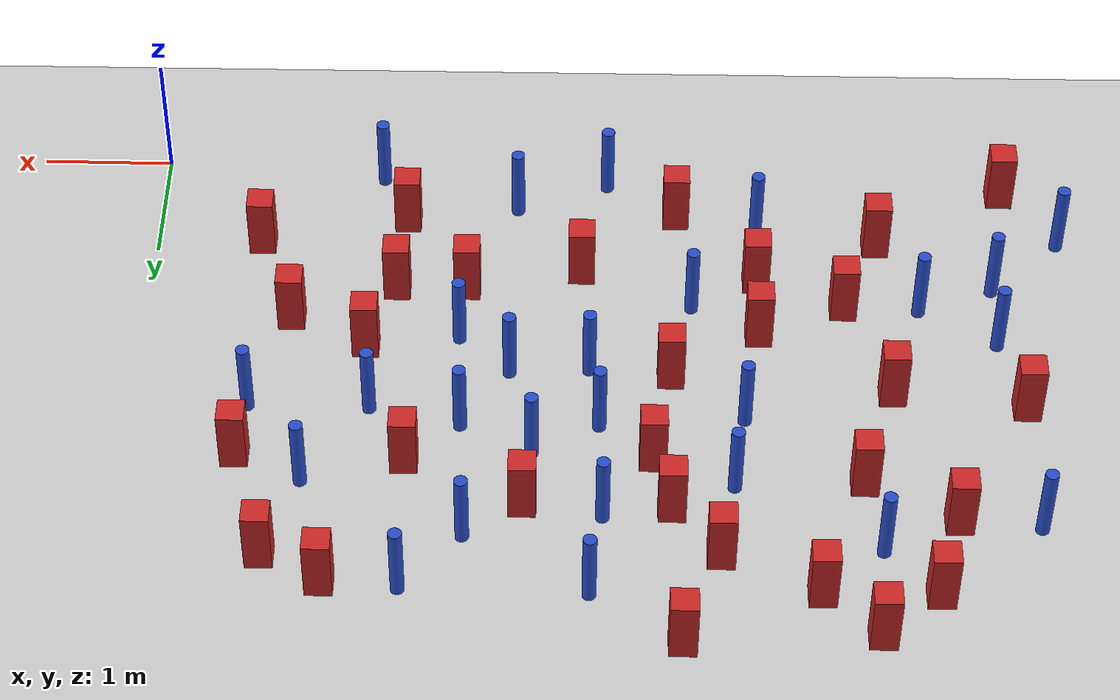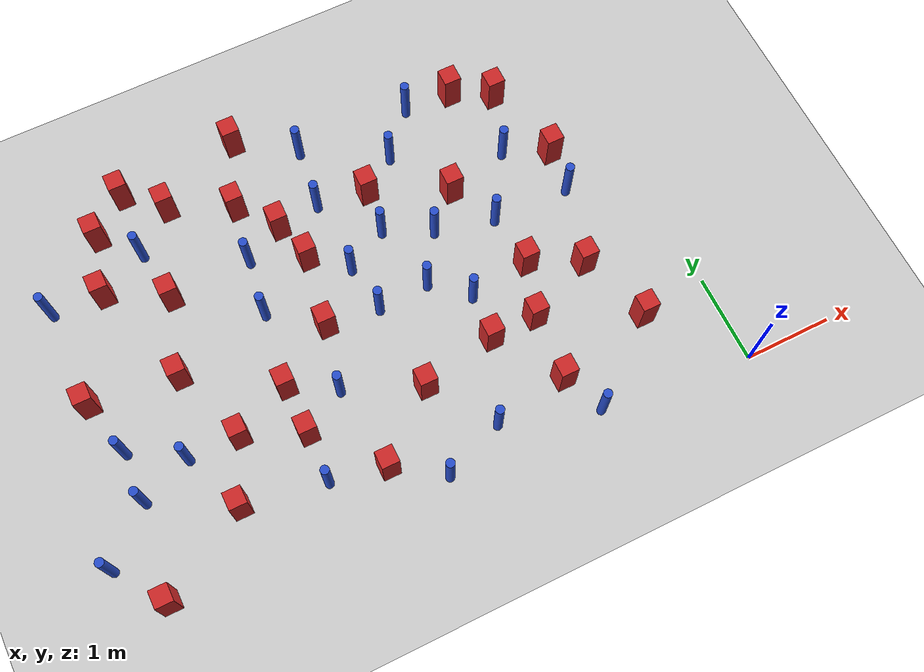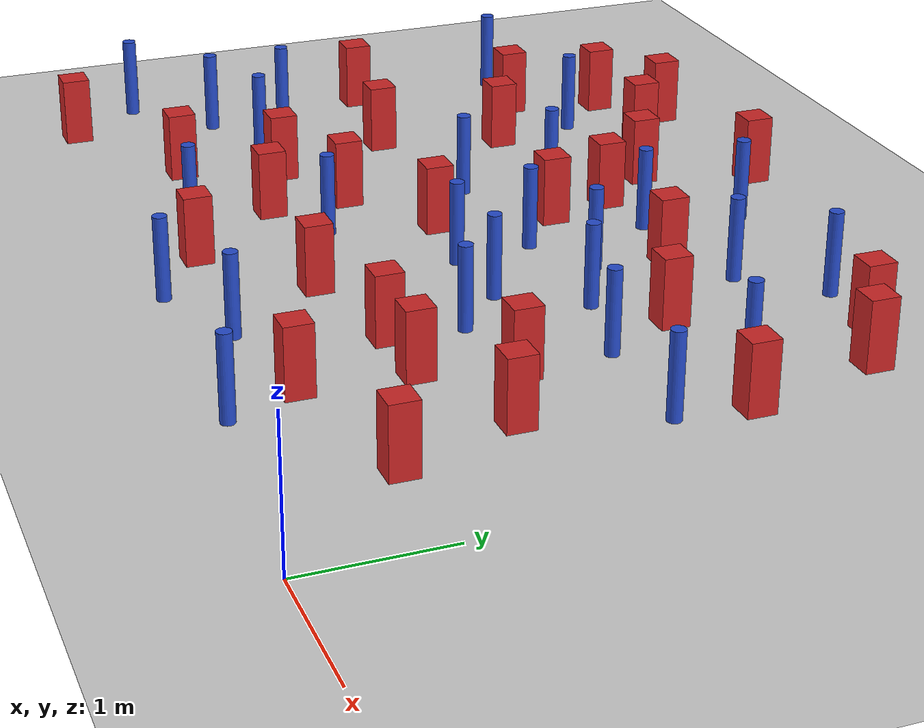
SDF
<sdf version="1.6">
 <world name="default">
  <model name="ground_plane">
   <static>1</static>
   <link name="link">
    <collision name="collision">
     <geometry><plane><normal>0 0 1</normal><size>100 100</size></plane></geometry>
     <surface><friction><ode><mu>100</mu><mu2>50</mu2></ode></friction></surface>
    </collision>
    <visual name="visual">
     <cast_shadows>0</cast_shadows>
     <geometry><plane><normal>0 0 1</normal><size>100 100</size></plane></geometry>
     <material>
      <ambient>1.0 1.0 1.0 1.0</ambient>
      <diffuse>0.8 0.8 0.8 1.0</diffuse>
      <specular>0.01 0.01 0.01 1.000000</specular>
     </material>
    </visual>
   </link>
  </model>
  <model name="pole_obstacle1">
   <static>true</static>
   <pose>-3.49145345762 0.226264162207 2.88873142074e-08 -9.90536690909e-09 4.60219948964e-07 -1.2096599498e-07</pose>
   <link name="link">
    <pose>0 0 0.3 0 -0 0</pose>
    <inertial>
     <mass>1</mass>
     <inertia><ixx>0.145833</ixx><ixy>0</ixy><ixz>0</ixz><iyy>0.145833</iyy><iyz>0</iyz><izz>0.125</izz></inertia>
    </inertial>
    <collision name="collision">
     <geometry><cylinder><radius>0.05</radius><length>.6</length></cylinder></geometry>
    </collision>
    <visual name="visual">
     <geometry><cylinder><radius>0.05</radius><length>.6</length></cylinder></geometry>
     <material>
      <script><name>Gazebo/Blue</name><uri>file://media/materials/scripts/gazebo.material</uri></script>
     </material>
    </visual>
   </link>
  </model>
  <model name="square_post_obstacle10">
   <static>true</static>
   <pose>-5.61227143454 2.45964329711 8.22691968438e-08 7.2212513382e-06 -7.54495500217e-07 2.29674213826e-05</pose>
   <link name="link">
    <pose>0 0 0.25 0 -0 0</pose>
    <inertial>
     <mass>100</mass>
     <inertia>
      <ixx>0.166667</ixx>
      <ixy>0</ixy>
      <ixz>0</ixz>
      <iyy>0.166667</iyy>
      <iyz>0</iyz>
      <izz>0.166667</izz>
     </inertia>
    </inertial>
    <collision name="collision"><geometry><box><size>.2 .2 .5</size></box></geometry></collision>
    <visual name="visual">
     <geometry><box><size>.2 .2 .5</size></box></geometry>
     <material>
      <script><name>Gazebo/Red</name><uri>file://media/materials/scripts/gazebo.material</uri></script>
     </material>
    </visual>
   </link>
  </model>
  <model name="square_post_obstacle14">
   <static>true</static>
   <pose>-5.2877736811 1.57196112984 8.22691968438e-08 7.2212513382e-06 -7.54495500217e-07 2.29674213826e-05</pose>
   <link name="link">
    <pose>0 0 0.25 0 -0 0</pose>
    <inertial>
     <mass>100</mass>
     <inertia>
      <ixx>0.166667</ixx>
      <ixy>0</ixy>
      <ixz>0</ixz>
      <iyy>0.166667</iyy>
      <iyz>0</iyz>
      <izz>0.166667</izz>
     </inertia>
    </inertial>
    <collision name="collision"><geometry><box><size>.2 .2 .5</size></box></geometry></collision>
    <visual name="visual">
     <geometry><box><size>.2 .2 .5</size></box></geometry>
     <material>
      <script><name>Gazebo/Red</name><uri>file://media/materials/scripts/gazebo.material</uri></script>
     </material>
    </visual>
   </link>
  </model>
  <model name="pole_obstacle13">
   <static>true</static>
   <pose>-3.37699610035 4.40599011899 2.88873142074e-08 -9.90536689859e-09 4.60219948989e-07 -1.20965994961e-07</pose>
   <link name="link">
    <pose>0 0 0.3 0 -0 0</pose>
    <inertial>
     <mass>1</mass>
     <inertia><ixx>0.145833</ixx><ixy>0</ixy><ixz>0</ixz><iyy>0.145833</iyy><iyz>0</iyz><izz>0.125</izz></inertia>
    </inertial>
    <collision name="collision">
     <geometry><cylinder><radius>0.05</radius><length>.6</length></cylinder></geometry>
    </collision>
    <visual name="visual">
     <geometry><cylinder><radius>0.05</radius><length>.6</length></cylinder></geometry>
     <material>
      <script><name>Gazebo/Blue</name><uri>file://media/materials/scripts/gazebo.material</uri></script>
     </material>
    </visual>
   </link>
  </model>
  <model name="pole_obstacle14">
   <static>true</static>
   <pose>-4.51162540025 2.73058737092 2.88873142074e-08 -9.90536690245e-09 4.6021994898e-07 -1.20965994966e-07</pose>
   <link name="link">
    <pose>0 0 0.3 0 -0 0</pose>
    <inertial>
     <mass>1</mass>
     <inertia><ixx>0.145833</ixx><ixy>0</ixy><ixz>0</ixz><iyy>0.145833</iyy><iyz>0</iyz><izz>0.125</izz></inertia>
    </inertial>
    <collision name="collision">
     <geometry><cylinder><radius>0.05</radius><length>.6</length></cylinder></geometry>
    </collision>
    <visual name="visual">
     <geometry><cylinder><radius>0.05</radius><length>.6</length></cylinder></geometry>
     <material>
      <script><name>Gazebo/Blue</name><uri>file://media/materials/scripts/gazebo.material</uri></script>
     </material>
    </visual>
   </link>
  </model>
  <model name="pole_obstacle17">
   <static>true</static>
   <pose>-2.38275450825 1.92439304847 2.88873142074e-08 -9.90536689395e-09 4.60219949e-07 -1.20965994953e-07</pose>
   <link name="link">
    <pose>0 0 0.3 0 -0 0</pose>
    <inertial>
     <mass>1</mass>
     <inertia><ixx>0.145833</ixx><ixy>0</ixy><ixz>0</ixz><iyy>0.145833</iyy><iyz>0</iyz><izz>0.125</izz></inertia>
    </inertial>
    <collision name="collision">
     <geometry><cylinder><radius>0.05</radius><length>.6</length></cylinder></geometry>
    </collision>
    <visual name="visual">
     <geometry><cylinder><radius>0.05</radius><length>.6</length></cylinder></geometry>
     <material>
      <script><name>Gazebo/Blue</name><uri>file://media/materials/scripts/gazebo.material</uri></script>
     </material>
    </visual>
   </link>
  </model>
  <model name="square_post_obstacle27">
   <static>true</static>
   <pose>-6.59607558141 2.58750587462 8.22691968438e-08 7.2212513382e-06 -7.54495500217e-07 2.29674213826e-05</pose>
   <link name="link">
    <pose>0 0 0.25 0 -0 0</pose>
    <inertial>
     <mass>100</mass>
     <inertia>
      <ixx>0.166667</ixx>
      <ixy>0</ixy>
      <ixz>0</ixz>
      <iyy>0.166667</iyy>
      <iyz>0</iyz>
      <izz>0.166667</izz>
     </inertia>
    </inertial>
    <collision name="collision"><geometry><box><size>.2 .2 .5</size></box></geometry></collision>
    <visual name="visual">
     <geometry><box><size>.2 .2 .5</size></box></geometry>
     <material>
      <script><name>Gazebo/Red</name><uri>file://media/materials/scripts/gazebo.material</uri></script>
     </material>
    </visual>
   </link>
  </model>
  <model name="square_post_obstacle28">
   <static>true</static>
   <pose>-5.57000486562 0.87581178728 8.22691968438e-08 7.2212513382e-06 -7.54495500217e-07 2.29674213826e-05</pose>
   <link name="link">
    <pose>0 0 0.25 0 -0 0</pose>
    <inertial>
     <mass>100</mass>
     <inertia>
      <ixx>0.166667</ixx>
      <ixy>0</ixy>
      <ixz>0</ixz>
      <iyy>0.166667</iyy>
      <iyz>0</iyz>
      <izz>0.166667</izz>
     </inertia>
    </inertial>
    <collision name="collision"><geometry><box><size>.2 .2 .5</size></box></geometry></collision>
    <visual name="visual">
     <geometry><box><size>.2 .2 .5</size></box></geometry>
     <material>
      <script><name>Gazebo/Red</name><uri>file://media/materials/scripts/gazebo.material</uri></script>
     </material>
    </visual>
   </link>
  </model>
  <model name="square_post_obstacle29">
   <static>true</static>
   <pose>-5.40813774441 4.75399333263 8.22691968438e-08 7.2212513382e-06 -7.54495500217e-07 2.29674213826e-05</pose>
   <link name="link">
    <pose>0 0 0.25 0 -0 0</pose>
    <inertial>
     <mass>100</mass>
     <inertia>
      <ixx>0.166667</ixx>
      <ixy>0</ixy>
      <ixz>0</ixz>
      <iyy>0.166667</iyy>
      <iyz>0</iyz>
      <izz>0.166667</izz>
     </inertia>
    </inertial>
    <collision name="collision"><geometry><box><size>.2 .2 .5</size></box></geometry></collision>
    <visual name="visual">
     <geometry><box><size>.2 .2 .5</size></box></geometry>
     <material>
      <script><name>Gazebo/Red</name><uri>file://media/materials/scripts/gazebo.material</uri></script>
     </material>
    </visual>
   </link>
  </model>
  <model name="pole_obstacle21">
   <static>true</static>
   <pose>-2.47026333002 3.88700977102 2.88873142074e-08 -9.90536690232e-09 4.6021994898e-07 -1.20965994968e-07</pose>
   <link name="link">
    <pose>0 0 0.3 0 -0 0</pose>
    <inertial>
     <mass>1</mass>
     <inertia><ixx>0.145833</ixx><ixy>0</ixy><ixz>0</ixz><iyy>0.145833</iyy><iyz>0</iyz><izz>0.125</izz></inertia>
    </inertial>
    <collision name="collision">
     <geometry><cylinder><radius>0.05</radius><length>.6</length></cylinder></geometry>
    </collision>
    <visual name="visual">
     <geometry><cylinder><radius>0.05</radius><length>.6</length></cylinder></geometry>
     <material>
      <script><name>Gazebo/Blue</name><uri>file://media/materials/scripts/gazebo.material</uri></script>
     </material>
    </visual>
   </link>
  </model>
  <model name="square_post_obstacle31">
   <static>true</static>
   <pose>-0.78774820962 3.1520821528 8.22691968438e-08 7.2212513382e-06 -7.54495500217e-07 2.29674213826e-05</pose>
   <link name="link">
    <pose>0 0 0.25 0 -0 0</pose>
    <inertial>
     <mass>100</mass>
     <inertia>
      <ixx>0.166667</ixx>
      <ixy>0</ixy>
      <ixz>0</ixz>
      <iyy>0.166667</iyy>
      <iyz>0</iyz>
      <izz>0.166667</izz>
     </inertia>
    </inertial>
    <collision name="collision"><geometry><box><size>.2 .2 .5</size></box></geometry></collision>
    <visual name="visual">
     <geometry><box><size>.2 .2 .5</size></box></geometry>
     <material>
      <script><name>Gazebo/Red</name><uri>file://media/materials/scripts/gazebo.material</uri></script>
     </material>
    </visual>
   </link>
  </model>
  <model name="pole_obstacle32">
   <static>true</static>
   <pose>-6.43399321943 1.92442004686 2.88873142074e-08 -9.90536689445e-09 4.60219948999e-07 -1.20965994956e-07</pose>
   <link name="link">
    <pose>0 0 0.3 0 -0 0</pose>
    <inertial>
     <mass>1</mass>
     <inertia><ixx>0.145833</ixx><ixy>0</ixy><ixz>0</ixz><iyy>0.145833</iyy><iyz>0</iyz><izz>0.125</izz></inertia>
    </inertial>
    <collision name="collision">
     <geometry><cylinder><radius>0.05</radius><length>.6</length></cylinder></geometry>
    </collision>
    <visual name="visual">
     <geometry><cylinder><radius>0.05</radius><length>.6</length></cylinder></geometry>
     <material>
      <script><name>Gazebo/Blue</name><uri>file://media/materials/scripts/gazebo.material</uri></script>
     </material>
    </visual>
   </link>
  </model>
  <model name="pole_obstacle37">
   <static>true</static>
   <pose>-1.28037980983 3.3846026239 2.88873142074e-08 -9.90536689791e-09 4.6021994899e-07 -1.20965994959e-07</pose>
   <link name="link">
    <pose>0 0 0.3 0 -0 0</pose>
    <inertial>
     <mass>1</mass>
     <inertia><ixx>0.145833</ixx><ixy>0</ixy><ixz>0</ixz><iyy>0.145833</iyy><iyz>0</iyz><izz>0.125</izz></inertia>
    </inertial>
    <collision name="collision">
     <geometry><cylinder><radius>0.05</radius><length>.6</length></cylinder></geometry>
    </collision>
    <visual name="visual">
     <geometry><cylinder><radius>0.05</radius><length>.6</length></cylinder></geometry>
     <material>
      <script><name>Gazebo/Blue</name><uri>file://media/materials/scripts/gazebo.material</uri></script>
     </material>
    </visual>
   </link>
  </model>
  <model name="square_post_obstacle46">
   <static>true</static>
   <pose>-1.48677609734 4.34802079145 8.22691968438e-08 7.2212513382e-06 -7.54495500217e-07 2.29674213826e-05</pose>
   <link name="link">
    <pose>0 0 0.25 0 -0 0</pose>
    <inertial>
     <mass>100</mass>
     <inertia>
      <ixx>0.166667</ixx>
      <ixy>0</ixy>
      <ixz>0</ixz>
      <iyy>0.166667</iyy>
      <iyz>0</iyz>
      <izz>0.166667</izz>
     </inertia>
    </inertial>
    <collision name="collision"><geometry><box><size>.2 .2 .5</size></box></geometry></collision>
    <visual name="visual">
     <geometry><box><size>.2 .2 .5</size></box></geometry>
     <material>
      <script><name>Gazebo/Red</name><uri>file://media/materials/scripts/gazebo.material</uri></script>
     </material>
    </visual>
   </link>
  </model>
  <model name="square_post_obstacle51">
   <static>true</static>
   <pose>-5.0071753273 4.38698122143 8.22691968438e-08 7.2212513382e-06 -7.54495500217e-07 2.29674213826e-05</pose>
   <link name="link">
    <pose>0 0 0.25 0 -0 0</pose>
    <inertial>
     <mass>100</mass>
     <inertia>
      <ixx>0.166667</ixx>
      <ixy>0</ixy>
      <ixz>0</ixz>
      <iyy>0.166667</iyy>
      <iyz>0</iyz>
      <izz>0.166667</izz>
     </inertia>
    </inertial>
    <collision name="collision"><geometry><box><size>.2 .2 .5</size></box></geometry></collision>
    <visual name="visual">
     <geometry><box><size>.2 .2 .5</size></box></geometry>
     <material>
      <script><name>Gazebo/Red</name><uri>file://media/materials/scripts/gazebo.material</uri></script>
     </material>
    </visual>
   </link>
  </model>
  <model name="pole_obstacle51">
   <static>true</static>
   <pose>-2.7931308182 0.506604703936 2.88873142074e-08 -9.90536689404e-09 4.60219949e-07 -1.20965994955e-07</pose>
   <link name="link">
    <pose>0 0 0.3 0 -0 0</pose>
    <inertial>
     <mass>1</mass>
     <inertia><ixx>0.145833</ixx><ixy>0</ixy><ixz>0</ixz><iyy>0.145833</iyy><iyz>0</iyz><izz>0.125</izz></inertia>
    </inertial>
    <collision name="collision">
     <geometry><cylinder><radius>0.05</radius><length>.6</length></cylinder></geometry>
    </collision>
    <visual name="visual">
     <geometry><cylinder><radius>0.05</radius><length>.6</length></cylinder></geometry>
     <material>
      <script><name>Gazebo/Blue</name><uri>file://media/materials/scripts/gazebo.material</uri></script>
     </material>
    </visual>
   </link>
  </model>
  <model name="pole_obstacle59">
   <static>true</static>
   <pose>-3.36241737606 2.24000275357 2.88873142074e-08 -9.90536690232e-09 4.6021994898e-07 -1.20965994968e-07</pose>
   <link name="link">
    <pose>0 0 0.3 0 -0 0</pose>
    <inertial>
     <mass>1</mass>
     <inertia><ixx>0.145833</ixx><ixy>0</ixy><ixz>0</ixz><iyy>0.145833</iyy><iyz>0</iyz><izz>0.125</izz></inertia>
    </inertial>
    <collision name="collision">
     <geometry><cylinder><radius>0.05</radius><length>.6</length></cylinder></geometry>
    </collision>
    <visual name="visual">
     <geometry><cylinder><radius>0.05</radius><length>.6</length></cylinder></geometry>
     <material>
      <script><name>Gazebo/Blue</name><uri>file://media/materials/scripts/gazebo.material</uri></script>
     </material>
    </visual>
   </link>
  </model>
  <model name="square_post_obstacle68">
   <static>true</static>
   <pose>-4.02483889352 4.83824581101 8.22691968438e-08 7.2212513382e-06 -7.54495500217e-07 2.29674213826e-05</pose>
   <link name="link">
    <pose>0 0 0.25 0 -0 0</pose>
    <inertial>
     <mass>100</mass>
     <inertia>
      <ixx>0.166667</ixx>
      <ixy>0</ixy>
      <ixz>0</ixz>
      <iyy>0.166667</iyy>
      <iyz>0</iyz>
      <izz>0.166667</izz>
     </inertia>
    </inertial>
    <collision name="collision"><geometry><box><size>.2 .2 .5</size></box></geometry></collision>
    <visual name="visual">
     <geometry><box><size>.2 .2 .5</size></box></geometry>
     <material>
      <script><name>Gazebo/Red</name><uri>file://media/materials/scripts/gazebo.material</uri></script>
     </material>
    </visual>
   </link>
  </model>
  <model name="square_post_obstacle73">
   <static>true</static>
   <pose>-5.35760563818 3.34932124848 8.22691968438e-08 7.2212513382e-06 -7.54495500217e-07 2.29674213826e-05</pose>
   <link name="link">
    <pose>0 0 0.25 0 -0 0</pose>
    <inertial>
     <mass>100</mass>
     <inertia>
      <ixx>0.166667</ixx>
      <ixy>0</ixy>
      <ixz>0</ixz>
      <iyy>0.166667</iyy>
      <iyz>0</iyz>
      <izz>0.166667</izz>
     </inertia>
    </inertial>
    <collision name="collision"><geometry><box><size>.2 .2 .5</size></box></geometry></collision>
    <visual name="visual">
     <geometry><box><size>.2 .2 .5</size></box></geometry>
     <material>
      <script><name>Gazebo/Red</name><uri>file://media/materials/scripts/gazebo.material</uri></script>
     </material>
    </visual>
   </link>
  </model>
  <model name="square_post_obstacle75">
   <static>true</static>
   <pose>-0.817578390947 0.923655932228 8.22691968438e-08 7.2212513382e-06 -7.54495500217e-07 2.29674213826e-05</pose>
   <link name="link">
    <pose>0 0 0.25 0 -0 0</pose>
    <inertial>
     <mass>100</mass>
     <inertia>
      <ixx>0.166667</ixx>
      <ixy>0</ixy>
      <ixz>0</ixz>
      <iyy>0.166667</iyy>
      <iyz>0</iyz>
      <izz>0.166667</izz>
     </inertia>
    </inertial>
    <collision name="collision"><geometry><box><size>.2 .2 .5</size></box></geometry></collision>
    <visual name="visual">
     <geometry><box><size>.2 .2 .5</size></box></geometry>
     <material>
      <script><name>Gazebo/Red</name><uri>file://media/materials/scripts/gazebo.material</uri></script>
     </material>
    </visual>
   </link>
  </model>
  <model name="square_post_obstacle78">
   <static>true</static>
   <pose>-3.29575197089 1.21228905211 8.22691968438e-08 7.2212513382e-06 -7.54495500217e-07 2.29674213826e-05</pose>
   <link name="link">
    <pose>0 0 0.25 0 -0 0</pose>
    <inertial>
     <mass>100</mass>
     <inertia>
      <ixx>0.166667</ixx>
      <ixy>0</ixy>
      <ixz>0</ixz>
      <iyy>0.166667</iyy>
      <iyz>0</iyz>
      <izz>0.166667</izz>
     </inertia>
    </inertial>
    <collision name="collision"><geometry><box><size>.2 .2 .5</size></box></geometry></collision>
    <visual name="visual">
     <geometry><box><size>.2 .2 .5</size></box></geometry>
     <material>
      <script><name>Gazebo/Red</name><uri>file://media/materials/scripts/gazebo.material</uri></script>
     </material>
    </visual>
   </link>
  </model>
  <model name="square_post_obstacle79">
   <static>true</static>
   <pose>-6.57762825055 0.297184425246 8.22691968438e-08 7.2212513382e-06 -7.54495500217e-07 2.29674213826e-05</pose>
   <link name="link">
    <pose>0 0 0.25 0 -0 0</pose>
    <inertial>
     <mass>100</mass>
     <inertia>
      <ixx>0.166667</ixx>
      <ixy>0</ixy>
      <ixz>0</ixz>
      <iyy>0.166667</iyy>
      <iyz>0</iyz>
      <izz>0.166667</izz>
     </inertia>
    </inertial>
    <collision name="collision"><geometry><box><size>.2 .2 .5</size></box></geometry></collision>
    <visual name="visual">
     <geometry><box><size>.2 .2 .5</size></box></geometry>
     <material>
      <script><name>Gazebo/Red</name><uri>file://media/materials/scripts/gazebo.material</uri></script>
     </material>
    </visual>
   </link>
  </model>
  <model name="pole_obstacle88">
   <static>true</static>
   <pose>-2.94805302077 3.07986730494 2.88873142074e-08 -9.90536690232e-09 4.6021994898e-07 -1.20965994968e-07</pose>
   <link name="link">
    <pose>0 0 0.3 0 -0 0</pose>
    <inertial>
     <mass>1</mass>
     <inertia><ixx>0.145833</ixx><ixy>0</ixy><ixz>0</ixz><iyy>0.145833</iyy><iyz>0</iyz><izz>0.125</izz></inertia>
    </inertial>
    <collision name="collision">
     <geometry><cylinder><radius>0.05</radius><length>.6</length></cylinder></geometry>
    </collision>
    <visual name="visual">
     <geometry><cylinder><radius>0.05</radius><length>.6</length></cylinder></geometry>
     <material>
      <script><name>Gazebo/Blue</name><uri>file://media/materials/scripts/gazebo.material</uri></script>
     </material>
    </visual>
   </link>
  </model>
  <model name="square_post_obstacle89">
   <static>true</static>
   <pose>-1.93632528051 0.656952301134 8.22691968438e-08 7.2212513382e-06 -7.54495500217e-07 2.29674213826e-05</pose>
   <link name="link">
    <pose>0 0 0.25 0 -0 0</pose>
    <inertial>
     <mass>100</mass>
     <inertia>
      <ixx>0.166667</ixx>
      <ixy>0</ixy>
      <ixz>0</ixz>
      <iyy>0.166667</iyy>
      <iyz>0</iyz>
      <izz>0.166667</izz>
     </inertia>
    </inertial>
    <collision name="collision"><geometry><box><size>.2 .2 .5</size></box></geometry></collision>
    <visual name="visual">
     <geometry><box><size>.2 .2 .5</size></box></geometry>
     <material>
      <script><name>Gazebo/Red</name><uri>file://media/materials/scripts/gazebo.material</uri></script>
     </material>
    </visual>
   </link>
  </model>
  <model name="pole_obstacle117">
   <static>true</static>
   <pose>-4.64787669489 0.714209479701 2.88873142074e-08 -9.90536689837e-09 4.60219948989e-07 -1.2096599496e-07</pose>
   <link name="link">
    <pose>0 0 0.3 0 -0 0</pose>
    <inertial>
     <mass>1</mass>
     <inertia><ixx>0.145833</ixx><ixy>0</ixy><ixz>0</ixz><iyy>0.145833</iyy><iyz>0</iyz><izz>0.125</izz></inertia>
    </inertial>
    <collision name="collision">
     <geometry><cylinder><radius>0.05</radius><length>.6</length></cylinder></geometry>
    </collision>
    <visual name="visual">
     <geometry><cylinder><radius>0.05</radius><length>.6</length></cylinder></geometry>
     <material>
      <script><name>Gazebo/Blue</name><uri>file://media/materials/scripts/gazebo.material</uri></script>
     </material>
    </visual>
   </link>
  </model>
  <model name="square_post_obstacle104">
   <static>true</static>
   <pose>-4.30666706497 4.05500242875 8.22691968438e-08 7.22125133819e-06 -7.54495500217e-07 2.29674213826e-05</pose>
   <link name="link">
    <pose>0 0 0.25 0 -0 0</pose>
    <inertial>
     <mass>100</mass>
     <inertia>
      <ixx>0.166667</ixx>
      <ixy>0</ixy>
      <ixz>0</ixz>
      <iyy>0.166667</iyy>
      <iyz>0</iyz>
      <izz>0.166667</izz>
     </inertia>
    </inertial>
    <collision name="collision"><geometry><box><size>.2 .2 .5</size></box></geometry></collision>
    <visual name="visual">
     <geometry><box><size>.2 .2 .5</size></box></geometry>
     <material>
      <script><name>Gazebo/Red</name><uri>file://media/materials/scripts/gazebo.material</uri></script>
     </material>
    </visual>
   </link>
  </model>
  <model name="square_post_obstacle106">
   <static>true</static>
   <pose>-2.42363140146 1.39810347673 8.22691968438e-08 7.2212513382e-06 -7.54495500217e-07 2.29674213826e-05</pose>
   <link name="link">
    <pose>0 0 0.25 0 -0 0</pose>
    <inertial>
     <mass>100</mass>
     <inertia>
      <ixx>0.166667</ixx>
      <ixy>0</ixy>
      <ixz>0</ixz>
      <iyy>0.166667</iyy>
      <iyz>0</iyz>
      <izz>0.166667</izz>
     </inertia>
    </inertial>
    <collision name="collision"><geometry><box><size>.2 .2 .5</size></box></geometry></collision>
    <visual name="visual">
     <geometry><box><size>.2 .2 .5</size></box></geometry>
     <material>
      <script><name>Gazebo/Red</name><uri>file://media/materials/scripts/gazebo.material</uri></script>
     </material>
    </visual>
   </link>
  </model>
  <model name="pole_obstacle122">
   <static>true</static>
   <pose>-1.74013833147 2.65867369941 2.88873142074e-08 -9.90536689791e-09 4.6021994899e-07 -1.20965994959e-07</pose>
   <link name="link">
    <pose>0 0 0.3 0 -0 0</pose>
    <inertial>
     <mass>1</mass>
     <inertia><ixx>0.145833</ixx><ixy>0</ixy><ixz>0</ixz><iyy>0.145833</iyy><iyz>0</iyz><izz>0.125</izz></inertia>
    </inertial>
    <collision name="collision">
     <geometry><cylinder><radius>0.05</radius><length>.6</length></cylinder></geometry>
    </collision>
    <visual name="visual">
     <geometry><cylinder><radius>0.05</radius><length>.6</length></cylinder></geometry>
     <material>
      <script><name>Gazebo/Blue</name><uri>file://media/materials/scripts/gazebo.material</uri></script>
     </material>
    </visual>
   </link>
  </model>
  <model name="square_post_obstacle114">
   <static>true</static>
   <pose>-6.01265714752 3.70318828716 8.22691968438e-08 7.2212513382e-06 -7.54495500217e-07 2.29674213826e-05</pose>
   <link name="link">
    <pose>0 0 0.25 0 -0 0</pose>
    <inertial>
     <mass>100</mass>
     <inertia>
      <ixx>0.166667</ixx>
      <ixy>0</ixy>
      <ixz>0</ixz>
      <iyy>0.166667</iyy>
      <iyz>0</iyz>
      <izz>0.166667</izz>
     </inertia>
    </inertial>
    <collision name="collision"><geometry><box><size>.2 .2 .5</size></box></geometry></collision>
    <visual name="visual">
     <geometry><box><size>.2 .2 .5</size></box></geometry>
     <material>
      <script><name>Gazebo/Red</name><uri>file://media/materials/scripts/gazebo.material</uri></script>
     </material>
    </visual>
   </link>
  </model>
  <model name="pole_obstacle137">
   <static>true</static>
   <pose>-4.1349296472 1.57011531757 2.88873142074e-08 -9.90536689445e-09 4.60219948999e-07 -1.20965994956e-07</pose>
   <link name="link">
    <pose>0 0 0.3 0 -0 0</pose>
    <inertial>
     <mass>1</mass>
     <inertia><ixx>0.145833</ixx><ixy>0</ixy><ixz>0</ixz><iyy>0.145833</iyy><iyz>0</iyz><izz>0.125</izz></inertia>
    </inertial>
    <collision name="collision">
     <geometry><cylinder><radius>0.05</radius><length>.6</length></cylinder></geometry>
    </collision>
    <visual name="visual">
     <geometry><cylinder><radius>0.05</radius><length>.6</length></cylinder></geometry>
     <material>
      <script><name>Gazebo/Blue</name><uri>file://media/materials/scripts/gazebo.material</uri></script>
     </material>
    </visual>
   </link>
  </model>
  <model name="square_post_obstacle124">
   <static>true</static>
   <pose>-3.96360170231 3.62267198993 8.22691968438e-08 7.2212513382e-06 -7.54495500217e-07 2.29674213826e-05</pose>
   <link name="link">
    <pose>0 0 0.25 0 -0 0</pose>
    <inertial>
     <mass>100</mass>
     <inertia>
      <ixx>0.166667</ixx>
      <ixy>0</ixy>
      <ixz>0</ixz>
      <iyy>0.166667</iyy>
      <iyz>0</iyz>
      <izz>0.166667</izz>
     </inertia>
    </inertial>
    <collision name="collision"><geometry><box><size>.2 .2 .5</size></box></geometry></collision>
    <visual name="visual">
     <geometry><box><size>.2 .2 .5</size></box></geometry>
     <material>
      <script><name>Gazebo/Red</name><uri>file://media/materials/scripts/gazebo.material</uri></script>
     </material>
    </visual>
   </link>
  </model>
  <model name="pole_obstacle140">
   <static>true</static>
   <pose>-6.98234153666 0.832434656886 2.88873142074e-08 -9.90536689837e-09 4.60219948989e-07 -1.2096599496e-07</pose>
   <link name="link">
    <pose>0 0 0.3 0 -0 0</pose>
    <inertial>
     <mass>1</mass>
     <inertia><ixx>0.145833</ixx><ixy>0</ixy><ixz>0</ixz><iyy>0.145833</iyy><iyz>0</iyz><izz>0.125</izz></inertia>
    </inertial>
    <collision name="collision">
     <geometry><cylinder><radius>0.05</radius><length>.6</length></cylinder></geometry>
    </collision>
    <visual name="visual">
     <geometry><cylinder><radius>0.05</radius><length>.6</length></cylinder></geometry>
     <material>
      <script><name>Gazebo/Blue</name><uri>file://media/materials/scripts/gazebo.material</uri></script>
     </material>
    </visual>
   </link>
  </model>
  <model name="square_post_obstacle132">
   <static>true</static>
   <pose>-2.89209680272 3.59500922241 8.22691968438e-08 7.2212513382e-06 -7.54495500217e-07 2.29674213826e-05</pose>
   <link name="link">
    <pose>0 0 0.25 0 -0 0</pose>
    <inertial>
     <mass>100</mass>
     <inertia>
      <ixx>0.166667</ixx>
      <ixy>0</ixy>
      <ixz>0</ixz>
      <iyy>0.166667</iyy>
      <iyz>0</iyz>
      <izz>0.166667</izz>
     </inertia>
    </inertial>
    <collision name="collision"><geometry><box><size>.2 .2 .5</size></box></geometry></collision>
    <visual name="visual">
     <geometry><box><size>.2 .2 .5</size></box></geometry>
     <material>
      <script><name>Gazebo/Red</name><uri>file://media/materials/scripts/gazebo.material</uri></script>
     </material>
    </visual>
   </link>
  </model>
  <model name="square_post_obstacle136">
   <static>true</static>
   <pose>-3.83235695182 3.13888533257 8.22691968438e-08 7.2212513382e-06 -7.54495500217e-07 2.29674213826e-05</pose>
   <link name="link">
    <pose>0 0 0.25 0 -0 0</pose>
    <inertial>
     <mass>100</mass>
     <inertia>
      <ixx>0.166667</ixx>
      <ixy>0</ixy>
      <ixz>0</ixz>
      <iyy>0.166667</iyy>
      <iyz>0</iyz>
      <izz>0.166667</izz>
     </inertia>
    </inertial>
    <collision name="collision"><geometry><box><size>.2 .2 .5</size></box></geometry></collision>
    <visual name="visual">
     <geometry><box><size>.2 .2 .5</size></box></geometry>
     <material>
      <script><name>Gazebo/Red</name><uri>file://media/materials/scripts/gazebo.material</uri></script>
     </material>
    </visual>
   </link>
  </model>
  <model name="square_post_obstacle140">
   <static>true</static>
   <pose>-2.02393113176 3.19309587114 8.22691968438e-08 7.2212513382e-06 -7.54495500217e-07 2.29674213826e-05</pose>
   <link name="link">
    <pose>0 0 0.25 0 -0 0</pose>
    <inertial>
     <mass>100</mass>
     <inertia>
      <ixx>0.166667</ixx>
      <ixy>0</ixy>
      <ixz>0</ixz>
      <iyy>0.166667</iyy>
      <iyz>0</iyz>
      <izz>0.166667</izz>
     </inertia>
    </inertial>
    <collision name="collision"><geometry><box><size>.2 .2 .5</size></box></geometry></collision>
    <visual name="visual">
     <geometry><box><size>.2 .2 .5</size></box></geometry>
     <material>
      <script><name>Gazebo/Red</name><uri>file://media/materials/scripts/gazebo.material</uri></script>
     </material>
    </visual>
   </link>
  </model>
  <model name="square_post_obstacle142">
   <static>true</static>
   <pose>-1.04620929297 4.1029490099 8.22691968438e-08 7.2212513382e-06 -7.54495500217e-07 2.29674213826e-05</pose>
   <link name="link">
    <pose>0 0 0.25 0 -0 0</pose>
    <inertial>
     <mass>100</mass>
     <inertia>
      <ixx>0.166667</ixx>
      <ixy>0</ixy>
      <ixz>0</ixz>
      <iyy>0.166667</iyy>
      <iyz>0</iyz>
      <izz>0.166667</izz>
     </inertia>
    </inertial>
    <collision name="collision"><geometry><box><size>.2 .2 .5</size></box></geometry></collision>
    <visual name="visual">
     <geometry><box><size>.2 .2 .5</size></box></geometry>
     <material>
      <script><name>Gazebo/Red</name><uri>file://media/materials/scripts/gazebo.material</uri></script>
     </material>
    </visual>
   </link>
  </model>
  <model name="square_post_obstacle144">
   <static>true</static>
   <pose>-3.97007955829 2.31064415241 8.22691968438e-08 7.2212513382e-06 -7.54495500217e-07 2.29674213826e-05</pose>
   <link name="link">
    <pose>0 0 0.25 0 -0 0</pose>
    <inertial>
     <mass>100</mass>
     <inertia>
      <ixx>0.166667</ixx>
      <ixy>0</ixy>
      <ixz>0</ixz>
      <iyy>0.166667</iyy>
      <iyz>0</iyz>
      <izz>0.166667</izz>
     </inertia>
    </inertial>
    <collision name="collision"><geometry><box><size>.2 .2 .5</size></box></geometry></collision>
    <visual name="visual">
     <geometry><box><size>.2 .2 .5</size></box></geometry>
     <material>
      <script><name>Gazebo/Red</name><uri>file://media/materials/scripts/gazebo.material</uri></script>
     </material>
    </visual>
   </link>
  </model>
  <model name="square_post_obstacle160">
   <static>true</static>
   <pose>-4.63277661305 1.28961235863 8.22691968438e-08 7.2212513382e-06 -7.54495500217e-07 2.29674213826e-05</pose>
   <link name="link">
    <pose>0 0 0.25 0 -0 0</pose>
    <inertial>
     <mass>100</mass>
     <inertia>
      <ixx>0.166667</ixx>
      <ixy>0</ixy>
      <ixz>0</ixz>
      <iyy>0.166667</iyy>
      <iyz>0</iyz>
      <izz>0.166667</izz>
     </inertia>
    </inertial>
    <collision name="collision"><geometry><box><size>.2 .2 .5</size></box></geometry></collision>
    <visual name="visual">
     <geometry><box><size>.2 .2 .5</size></box></geometry>
     <material>
      <script><name>Gazebo/Red</name><uri>file://media/materials/scripts/gazebo.material</uri></script>
     </material>
    </visual>
   </link>
  </model>
  <model name="pole_obstacle171">
   <static>true</static>
   <pose>-2.03599264553 4.37777794559 2.88873142074e-08 -9.90536689575e-09 4.60219948995e-07 -1.20965994956e-07</pose>
   <link name="link">
    <pose>0 0 0.3 0 -0 0</pose>
    <inertial>
     <mass>1</mass>
     <inertia><ixx>0.145833</ixx><ixy>0</ixy><ixz>0</ixz><iyy>0.145833</iyy><iyz>0</iyz><izz>0.125</izz></inertia>
    </inertial>
    <collision name="collision">
     <geometry><cylinder><radius>0.05</radius><length>.6</length></cylinder></geometry>
    </collision>
    <visual name="visual">
     <geometry><cylinder><radius>0.05</radius><length>.6</length></cylinder></geometry>
     <material>
      <script><name>Gazebo/Blue</name><uri>file://media/materials/scripts/gazebo.material</uri></script>
     </material>
    </visual>
   </link>
  </model>
  <model name="square_post_obstacle163">
   <static>true</static>
   <pose>-4.02548018123 0.59041600682 8.22691968438e-08 7.2212513382e-06 -7.54495500217e-07 2.29674213826e-05</pose>
   <link name="link">
    <pose>0 0 0.25 0 -0 0</pose>
    <inertial>
     <mass>100</mass>
     <inertia>
      <ixx>0.166667</ixx>
      <ixy>0</ixy>
      <ixz>0</ixz>
      <iyy>0.166667</iyy>
      <iyz>0</iyz>
      <izz>0.166667</izz>
     </inertia>
    </inertial>
    <collision name="collision"><geometry><box><size>.2 .2 .5</size></box></geometry></collision>
    <visual name="visual">
     <geometry><box><size>.2 .2 .5</size></box></geometry>
     <material>
      <script><name>Gazebo/Red</name><uri>file://media/materials/scripts/gazebo.material</uri></script>
     </material>
    </visual>
   </link>
  </model>
  <model name="pole_obstacle173">
   <static>true</static>
   <pose>-1.72586744911 0.174909171693 2.88873142074e-08 -9.9053668953e-09 4.60219948996e-07 -1.20965994955e-07</pose>
   <link name="link">
    <pose>0 0 0.3 0 -0 0</pose>
    <inertial>
     <mass>1</mass>
     <inertia><ixx>0.145833</ixx><ixy>0</ixy><ixz>0</ixz><iyy>0.145833</iyy><iyz>0</iyz><izz>0.125</izz></inertia>
    </inertial>
    <collision name="collision">
     <geometry><cylinder><radius>0.05</radius><length>.6</length></cylinder></geometry>
    </collision>
    <visual name="visual">
     <geometry><cylinder><radius>0.05</radius><length>.6</length></cylinder></geometry>
     <material>
      <script><name>Gazebo/Blue</name><uri>file://media/materials/scripts/gazebo.material</uri></script>
     </material>
    </visual>
   </link>
  </model>
  <model name="pole_obstacle176">
   <static>true</static>
   <pose>-6.43623397441 1.34754865957 2.88873142074e-08 -9.90536689445e-09 4.60219948999e-07 -1.20965994956e-07</pose>
   <link name="link">
    <pose>0 0 0.3 0 -0 0</pose>
    <inertial>
     <mass>1</mass>
     <inertia><ixx>0.145833</ixx><ixy>0</ixy><ixz>0</ixz><iyy>0.145833</iyy><iyz>0</iyz><izz>0.125</izz></inertia>
    </inertial>
    <collision name="collision">
     <geometry><cylinder><radius>0.05</radius><length>.6</length></cylinder></geometry>
    </collision>
    <visual name="visual">
     <geometry><cylinder><radius>0.05</radius><length>.6</length></cylinder></geometry>
     <material>
      <script><name>Gazebo/Blue</name><uri>file://media/materials/scripts/gazebo.material</uri></script>
     </material>
    </visual>
   </link>
  </model>
  <model name="pole_obstacle184">
   <static>true</static>
   <pose>-4.42173155727 3.38601888897 2.88873142074e-08 -9.90536690245e-09 4.6021994898e-07 -1.20965994966e-07</pose>
   <link name="link">
    <pose>0 0 0.3 0 -0 0</pose>
    <inertial>
     <mass>1</mass>
     <inertia><ixx>0.145833</ixx><ixy>0</ixy><ixz>0</ixz><iyy>0.145833</iyy><iyz>0</iyz><izz>0.125</izz></inertia>
    </inertial>
    <collision name="collision">
     <geometry><cylinder><radius>0.05</radius><length>.6</length></cylinder></geometry>
    </collision>
    <visual name="visual">
     <geometry><cylinder><radius>0.05</radius><length>.6</length></cylinder></geometry>
     <material>
      <script><name>Gazebo/Blue</name><uri>file://media/materials/scripts/gazebo.material</uri></script>
     </material>
    </visual>
   </link>
  </model>
  <model name="square_post_obstacle180">
   <static>true</static>
   <pose>-1.88754250232 1.40989812722 8.22691968438e-08 7.2212513382e-06 -7.54495500217e-07 2.29674213826e-05</pose>
   <link name="link">
    <pose>0 0 0.25 0 -0 0</pose>
    <inertial>
     <mass>100</mass>
     <inertia>
      <ixx>0.166667</ixx>
      <ixy>0</ixy>
      <ixz>0</ixz>
      <iyy>0.166667</iyy>
      <iyz>0</iyz>
      <izz>0.166667</izz>
     </inertia>
    </inertial>
    <collision name="collision"><geometry><box><size>.2 .2 .5</size></box></geometry></collision>
    <visual name="visual">
     <geometry><box><size>.2 .2 .5</size></box></geometry>
     <material>
      <script><name>Gazebo/Red</name><uri>file://media/materials/scripts/gazebo.material</uri></script>
     </material>
    </visual>
   </link>
  </model>
  <model name="square_post_obstacle189">
   <static>true</static>
   <pose>-1.10232343308 1.74849050144 8.22691968438e-08 7.2212513382e-06 -7.54495500217e-07 2.29674213826e-05</pose>
   <link name="link">
    <pose>0 0 0.25 0 -0 0</pose>
    <inertial>
     <mass>100</mass>
     <inertia>
      <ixx>0.166667</ixx>
      <ixy>0</ixy>
      <ixz>0</ixz>
      <iyy>0.166667</iyy>
      <iyz>0</iyz>
      <izz>0.166667</izz>
     </inertia>
    </inertial>
    <collision name="collision"><geometry><box><size>.2 .2 .5</size></box></geometry></collision>
    <visual name="visual">
     <geometry><box><size>.2 .2 .5</size></box></geometry>
     <material>
      <script><name>Gazebo/Red</name><uri>file://media/materials/scripts/gazebo.material</uri></script>
     </material>
    </visual>
   </link>
  </model>
  <model name="pole_obstacle193">
   <static>true</static>
   <pose>-3.46747488661 3.69057577447 2.88873142074e-08 -9.90536690232e-09 4.6021994898e-07 -1.20965994968e-07</pose>
   <link name="link">
    <pose>0 0 0.3 0 -0 0</pose>
    <inertial>
     <mass>1</mass>
     <inertia><ixx>0.145833</ixx><ixy>0</ixy><ixz>0</ixz><iyy>0.145833</iyy><iyz>0</iyz><izz>0.125</izz></inertia>
    </inertial>
    <collision name="collision">
     <geometry><cylinder><radius>0.05</radius><length>.6</length></cylinder></geometry>
    </collision>
    <visual name="visual">
     <geometry><cylinder><radius>0.05</radius><length>.6</length></cylinder></geometry>
     <material>
      <script><name>Gazebo/Blue</name><uri>file://media/materials/scripts/gazebo.material</uri></script>
     </material>
    </visual>
   </link>
  </model>
  <model name="pole_obstacle194">
   <static>true</static>
   <pose>-3.44064490693 2.80895256855 2.88873142074e-08 -9.90536690232e-09 4.6021994898e-07 -1.20965994968e-07</pose>
   <link name="link">
    <pose>0 0 0.3 0 -0 0</pose>
    <inertial>
     <mass>1</mass>
     <inertia><ixx>0.145833</ixx><ixy>0</ixy><ixz>0</ixz><iyy>0.145833</iyy><iyz>0</iyz><izz>0.125</izz></inertia>
    </inertial>
    <collision name="collision">
     <geometry><cylinder><radius>0.05</radius><length>.6</length></cylinder></geometry>
    </collision>
    <visual name="visual">
     <geometry><cylinder><radius>0.05</radius><length>.6</length></cylinder></geometry>
     <material>
      <script><name>Gazebo/Blue</name><uri>file://media/materials/scripts/gazebo.material</uri></script>
     </material>
    </visual>
   </link>
  </model>
  <model name="pole_obstacle200">
   <static>true</static>
   <pose>-5.86417663328 1.5766355896 2.88873142074e-08 -9.90536689445e-09 4.60219948999e-07 -1.20965994956e-07</pose>
   <link name="link">
    <pose>0 0 0.3 0 -0 0</pose>
    <inertial>
     <mass>1</mass>
     <inertia><ixx>0.145833</ixx><ixy>0</ixy><ixz>0</ixz><iyy>0.145833</iyy><iyz>0</iyz><izz>0.125</izz></inertia>
    </inertial>
    <collision name="collision">
     <geometry><cylinder><radius>0.05</radius><length>.6</length></cylinder></geometry>
    </collision>
    <visual name="visual">
     <geometry><cylinder><radius>0.05</radius><length>.6</length></cylinder></geometry>
     <material>
      <script><name>Gazebo/Blue</name><uri>file://media/materials/scripts/gazebo.material</uri></script>
     </material>
    </visual>
   </link>
  </model>
  <model name="pole_obstacle201">
   <static>true</static>
   <pose>-2.7681574474 2.27420365669 2.88873142074e-08 -9.90536690232e-09 4.6021994898e-07 -1.20965994968e-07</pose>
   <link name="link">
    <pose>0 0 0.3 0 -0 0</pose>
    <inertial>
     <mass>1</mass>
     <inertia><ixx>0.145833</ixx><ixy>0</ixy><ixz>0</ixz><iyy>0.145833</iyy><iyz>0</iyz><izz>0.125</izz></inertia>
    </inertial>
    <collision name="collision">
     <geometry><cylinder><radius>0.05</radius><length>.6</length></cylinder></geometry>
    </collision>
    <visual name="visual">
     <geometry><cylinder><radius>0.05</radius><length>.6</length></cylinder></geometry>
     <material>
      <script><name>Gazebo/Blue</name><uri>file://media/materials/scripts/gazebo.material</uri></script>
     </material>
    </visual>
   </link>
  </model>
  <model name="pole_obstacle203">
   <static>true</static>
   <pose>-6.60275894035 3.74252228004 2.88873142074e-08 -9.90536690245e-09 4.6021994898e-07 -1.20965994966e-07</pose>
   <link name="link">
    <pose>0 0 0.3 0 -0 0</pose>
    <inertial>
     <mass>1</mass>
     <inertia><ixx>0.145833</ixx><ixy>0</ixy><ixz>0</ixz><iyy>0.145833</iyy><iyz>0</iyz><izz>0.125</izz></inertia>
    </inertial>
    <collision name="collision">
     <geometry><cylinder><radius>0.05</radius><length>.6</length></cylinder></geometry>
    </collision>
    <visual name="visual">
     <geometry><cylinder><radius>0.05</radius><length>.6</length></cylinder></geometry>
     <material>
      <script><name>Gazebo/Blue</name><uri>file://media/materials/scripts/gazebo.material</uri></script>
     </material>
    </visual>
   </link>
  </model>
  <model name="pole_obstacle218">
   <static>true</static>
   <pose>-2.41810056094 2.81904765092 2.88873142074e-08 -9.90536690232e-09 4.6021994898e-07 -1.20965994968e-07</pose>
   <link name="link">
    <pose>0 0 0.3 0 -0 0</pose>
    <inertial>
     <mass>1</mass>
     <inertia><ixx>0.145833</ixx><ixy>0</ixy><ixz>0</ixz><iyy>0.145833</iyy><iyz>0</iyz><izz>0.125</izz></inertia>
    </inertial>
    <collision name="collision">
     <geometry><cylinder><radius>0.05</radius><length>.6</length></cylinder></geometry>
    </collision>
    <visual name="visual">
     <geometry><cylinder><radius>0.05</radius><length>.6</length></cylinder></geometry>
     <material>
      <script><name>Gazebo/Blue</name><uri>file://media/materials/scripts/gazebo.material</uri></script>
     </material>
    </visual>
   </link>
  </model>
  <model name="pole_obstacle220">
   <static>true</static>
   <pose>-5.46201208976 3.97753622018 2.88873142074e-08 -9.9053669014e-09 4.60219948982e-07 -1.20965994965e-07</pose>
   <link name="link">
    <pose>0 0 0.3 0 -0 0</pose>
    <inertial>
     <mass>1</mass>
     <inertia><ixx>0.145833</ixx><ixy>0</ixy><ixz>0</ixz><iyy>0.145833</iyy><iyz>0</iyz><izz>0.125</izz></inertia>
    </inertial>
    <collision name="collision">
     <geometry><cylinder><radius>0.05</radius><length>.6</length></cylinder></geometry>
    </collision>
    <visual name="visual">
     <geometry><cylinder><radius>0.05</radius><length>.6</length></cylinder></geometry>
     <material>
      <script><name>Gazebo/Blue</name><uri>file://media/materials/scripts/gazebo.material</uri></script>
     </material>
    </visual>
   </link>
  </model>
  <model name="square_post_obstacle209">
   <static>true</static>
   <pose>-5.83515404832 4.38172027122 8.22691968438e-08 7.2212513382e-06 -7.54495500217e-07 2.29674213826e-05</pose>
   <link name="link">
    <pose>0 0 0.25 0 -0 0</pose>
    <inertial>
     <mass>100</mass>
     <inertia>
      <ixx>0.166667</ixx>
      <ixy>0</ixy>
      <ixz>0</ixz>
      <iyy>0.166667</iyy>
      <iyz>0</iyz>
      <izz>0.166667</izz>
     </inertia>
    </inertial>
    <collision name="collision"><geometry><box><size>.2 .2 .5</size></box></geometry></collision>
    <visual name="visual">
     <geometry><box><size>.2 .2 .5</size></box></geometry>
     <material>
      <script><name>Gazebo/Red</name><uri>file://media/materials/scripts/gazebo.material</uri></script>
     </material>
    </visual>
   </link>
  </model>
  <model name="square_post_obstacle210">
   <static>true</static>
   <pose>-4.63761828005 1.8619238283 8.22691968438e-08 7.2212513382e-06 -7.54495500217e-07 2.29674213826e-05</pose>
   <link name="link">
    <pose>0 0 0.25 0 -0 0</pose>
    <inertial>
     <mass>100</mass>
     <inertia>
      <ixx>0.166667</ixx>
      <ixy>0</ixy>
      <ixz>0</ixz>
      <iyy>0.166667</iyy>
      <iyz>0</iyz>
      <izz>0.166667</izz>
     </inertia>
    </inertial>
    <collision name="collision"><geometry><box><size>.2 .2 .5</size></box></geometry></collision>
    <visual name="visual">
     <geometry><box><size>.2 .2 .5</size></box></geometry>
     <material>
      <script><name>Gazebo/Red</name><uri>file://media/materials/scripts/gazebo.material</uri></script>
     </material>
    </visual>
   </link>
  </model>
  <model name="square_post_obstacle215">
   <static>true</static>
   <pose>-1.68053324364 2.02598047203 8.22691968438e-08 7.2212513382e-06 -7.54495500217e-07 2.29674213826e-05</pose>
   <link name="link">
    <pose>0 0 0.25 0 -0 0</pose>
    <inertial>
     <mass>100</mass>
     <inertia>
      <ixx>0.166667</ixx>
      <ixy>0</ixy>
      <ixz>0</ixz>
      <iyy>0.166667</iyy>
      <iyz>0</iyz>
      <izz>0.166667</izz>
     </inertia>
    </inertial>
    <collision name="collision"><geometry><box><size>.2 .2 .5</size></box></geometry></collision>
    <visual name="visual">
     <geometry><box><size>.2 .2 .5</size></box></geometry>
     <material>
      <script><name>Gazebo/Red</name><uri>file://media/materials/scripts/gazebo.material</uri></script>
     </material>
    </visual>
   </link>
  </model>
  <model name="pole_obstacle221">
   <static>true</static>
   <pose>-0.838261990867 2.64660002041 2.88873142074e-08 -9.90536692048e-09 4.60219948937e-07 -1.20965994983e-07</pose>
   <link name="link">
    <pose>0 0 0.3 0 -0 0</pose>
    <inertial>
     <mass>1</mass>
     <inertia><ixx>0.145833</ixx><ixy>0</ixy><ixz>0</ixz><iyy>0.145833</iyy><iyz>0</iyz><izz>0.125</izz></inertia>
    </inertial>
    <collision name="collision">
     <geometry><cylinder><radius>0.05</radius><length>.6</length></cylinder></geometry>
    </collision>
    <visual name="visual">
     <geometry><cylinder><radius>0.05</radius><length>.6</length></cylinder></geometry>
     <material>
      <script><name>Gazebo/Blue</name><uri>file://media/materials/scripts/gazebo.material</uri></script>
     </material>
    </visual>
   </link>
  </model>
 </world>
</sdf>
